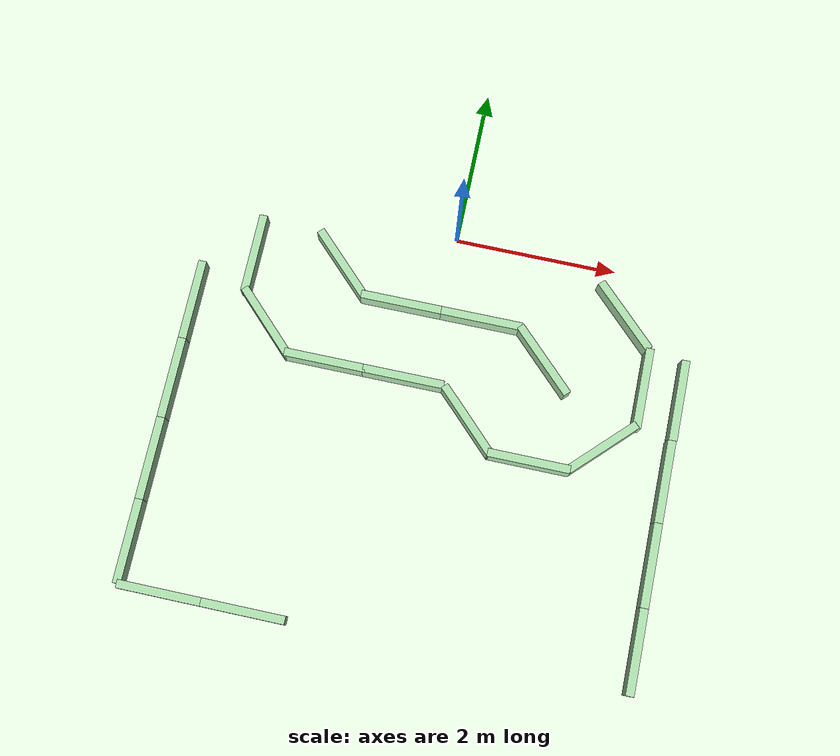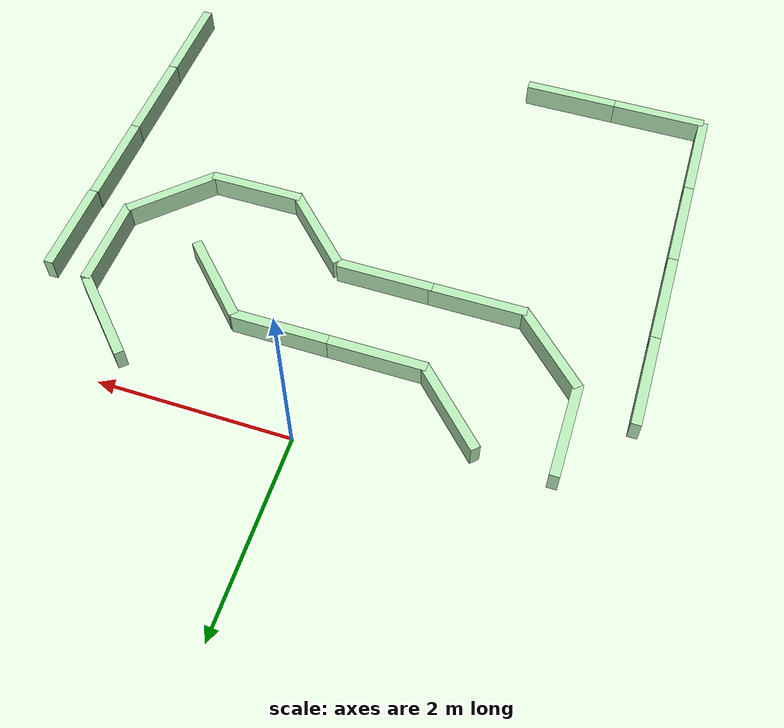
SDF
<sdf version="1.7">
 <world name="default">
  <model name="wall_100_25h_1_clone_1">
   <link name="link">
    <inertial>
     <mass>1</mass>
     <inertia>
      <ixx>0.166667</ixx>
      <ixy>0</ixy>
      <ixz>0</ixz>
      <iyy>0.166667</iyy>
      <iyz>0</iyz>
      <izz>0.166667</izz>
     </inertia>
    </inertial>
    <visual name="visual">
     <geometry><box><size>1 0.1 0.25</size></box></geometry>
     <material>
      <script><name>Gazebo/Grey</name><uri>file://media/materials/scripts/gazebo.material</uri></script>
      <ambient>0.3 0.5 0.3 1</ambient>
      <diffuse>0.7 0.9 0.7 1</diffuse>
      <specular>0.01 0.02 0.01 1</specular>
      <emissive>0 0 0 1</emissive>
      <lighting>1</lighting>
      <shader type="vertex"><normal_map>__default__</normal_map></shader>
     </material>
    </visual>
    <collision name="collision">
     <geometry><box><size>1 0.1 0.25</size></box></geometry>
     <surface>
      <friction>
       <ode><mu>1</mu><mu2>1</mu2><fdir1>0 0 0</fdir1><slip1>0</slip1><slip2>0</slip2></ode>
       <torsional>
        <coefficient>1</coefficient>
        <patch_radius>0</patch_radius>
        <surface_radius>0</surface_radius>
        <use_patch_radius>1</use_patch_radius>
        <ode><slip>0</slip></ode>
       </torsional>
      </friction>
      <bounce><restitution_coefficient>0</restitution_coefficient><threshold>1e+06</threshold></bounce>
      <contact>
       <collide_without_contact>0</collide_without_contact>
       <collide_without_contact_bitmask>1</collide_without_contact_bitmask>
       <collide_bitmask>1</collide_bitmask>
       <ode>
        <soft_cfm>0</soft_cfm>
        <soft_erp>0.2</soft_erp>
        <kp>1e+13</kp>
        <kd>1</kd>
        <max_vel>0.01</max_vel>
        <min_depth>0</min_depth>
       </ode>
       <bullet>
        <split_impulse>1</split_impulse>
        <split_impulse_penetration_threshold>-0.01</split_impulse_penetration_threshold>
        <soft_cfm>0</soft_cfm>
        <soft_erp>0.2</soft_erp>
        <kp>1e+13</kp>
        <kd>1</kd>
       </bullet>
      </contact>
     </surface>
    </collision>
   </link>
   <static>1</static>
   <pose>0.493942 -1 0.125 0.000404 -0 0</pose>
  </model>
  <model name="wall_100_25h_1_clone_2">
   <link name="link">
    <inertial>
     <mass>1</mass>
     <inertia>
      <ixx>0.166667</ixx>
      <ixy>0</ixy>
      <ixz>0</ixz>
      <iyy>0.166667</iyy>
      <iyz>0</iyz>
      <izz>0.166667</izz>
     </inertia>
    </inertial>
    <visual name="visual">
     <geometry><box><size>1 0.1 0.25</size></box></geometry>
     <material>
      <script><name>Gazebo/Grey</name><uri>file://media/materials/scripts/gazebo.material</uri></script>
      <ambient>0.3 0.5 0.3 1</ambient>
      <diffuse>0.7 0.9 0.7 1</diffuse>
      <specular>0.01 0.02 0.01 1</specular>
      <emissive>0 0 0 1</emissive>
      <lighting>1</lighting>
      <shader type="vertex"><normal_map>__default__</normal_map></shader>
     </material>
    </visual>
    <collision name="collision">
     <geometry><box><size>1 0.1 0.25</size></box></geometry>
     <surface>
      <friction>
       <ode><mu>1</mu><mu2>1</mu2><fdir1>0 0 0</fdir1><slip1>0</slip1><slip2>0</slip2></ode>
       <torsional>
        <coefficient>1</coefficient>
        <patch_radius>0</patch_radius>
        <surface_radius>0</surface_radius>
        <use_patch_radius>1</use_patch_radius>
        <ode><slip>0</slip></ode>
       </torsional>
      </friction>
      <bounce><restitution_coefficient>0</restitution_coefficient><threshold>1e+06</threshold></bounce>
      <contact>
       <collide_without_contact>0</collide_without_contact>
       <collide_without_contact_bitmask>1</collide_without_contact_bitmask>
       <collide_bitmask>1</collide_bitmask>
       <ode>
        <soft_cfm>0</soft_cfm>
        <soft_erp>0.2</soft_erp>
        <kp>1e+13</kp>
        <kd>1</kd>
        <max_vel>0.01</max_vel>
        <min_depth>0</min_depth>
       </ode>
       <bullet>
        <split_impulse>1</split_impulse>
        <split_impulse_penetration_threshold>-0.01</split_impulse_penetration_threshold>
        <soft_cfm>0</soft_cfm>
        <soft_erp>0.2</soft_erp>
        <kp>1e+13</kp>
        <kd>1</kd>
       </bullet>
      </contact>
     </surface>
    </collision>
   </link>
   <static>1</static>
   <pose>1.32902 -1.34995 0.125 0.000286 0.000286 -0.785398</pose>
  </model>
  <model name="wall_100_25h_1_clone_3">
   <link name="link">
    <inertial>
     <mass>1</mass>
     <inertia>
      <ixx>0.166667</ixx>
      <ixy>0</ixy>
      <ixz>0</ixz>
      <iyy>0.166667</iyy>
      <iyz>0</iyz>
      <izz>0.166667</izz>
     </inertia>
    </inertial>
    <visual name="visual">
     <geometry><box><size>1 0.1 0.25</size></box></geometry>
     <material>
      <script><name>Gazebo/Grey</name><uri>file://media/materials/scripts/gazebo.material</uri></script>
      <ambient>0.3 0.5 0.3 1</ambient>
      <diffuse>0.7 0.9 0.7 1</diffuse>
      <specular>0.01 0.02 0.01 1</specular>
      <emissive>0 0 0 1</emissive>
      <lighting>1</lighting>
      <shader type="vertex"><normal_map>__default__</normal_map></shader>
     </material>
    </visual>
    <collision name="collision">
     <geometry><box><size>1 0.1 0.25</size></box></geometry>
     <surface>
      <friction>
       <ode><mu>1</mu><mu2>1</mu2><fdir1>0 0 0</fdir1><slip1>0</slip1><slip2>0</slip2></ode>
       <torsional>
        <coefficient>1</coefficient>
        <patch_radius>0</patch_radius>
        <surface_radius>0</surface_radius>
        <use_patch_radius>1</use_patch_radius>
        <ode><slip>0</slip></ode>
       </torsional>
      </friction>
      <bounce><restitution_coefficient>0</restitution_coefficient><threshold>1e+06</threshold></bounce>
      <contact>
       <collide_without_contact>0</collide_without_contact>
       <collide_without_contact_bitmask>1</collide_without_contact_bitmask>
       <collide_bitmask>1</collide_bitmask>
       <ode>
        <soft_cfm>0</soft_cfm>
        <soft_erp>0.2</soft_erp>
        <kp>1e+13</kp>
        <kd>1</kd>
        <max_vel>0.01</max_vel>
        <min_depth>0</min_depth>
       </ode>
       <bullet>
        <split_impulse>1</split_impulse>
        <split_impulse_penetration_threshold>-0.01</split_impulse_penetration_threshold>
        <soft_cfm>0</soft_cfm>
        <soft_erp>0.2</soft_erp>
        <kp>1e+13</kp>
        <kd>1</kd>
       </bullet>
      </contact>
     </surface>
    </collision>
   </link>
   <static>1</static>
   <pose>0.578926 -2.26669 0.125 0.000286 0.000286 -0.785398</pose>
  </model>
  <model name="wall_100_25h_1_clone_4">
   <link name="link">
    <inertial>
     <mass>1</mass>
     <inertia>
      <ixx>0.166667</ixx>
      <ixy>0</ixy>
      <ixz>0</ixz>
      <iyy>0.166667</iyy>
      <iyz>0</iyz>
      <izz>0.166667</izz>
     </inertia>
    </inertial>
    <visual name="visual">
     <geometry><box><size>1 0.1 0.25</size></box></geometry>
     <material>
      <script><name>Gazebo/Grey</name><uri>file://media/materials/scripts/gazebo.material</uri></script>
      <ambient>0.3 0.5 0.3 1</ambient>
      <diffuse>0.7 0.9 0.7 1</diffuse>
      <specular>0.01 0.02 0.01 1</specular>
      <emissive>0 0 0 1</emissive>
      <lighting>1</lighting>
      <shader type="vertex"><normal_map>__default__</normal_map></shader>
     </material>
    </visual>
    <collision name="collision">
     <geometry><box><size>1 0.1 0.25</size></box></geometry>
     <surface>
      <friction>
       <ode><mu>1</mu><mu2>1</mu2><fdir1>0 0 0</fdir1><slip1>0</slip1><slip2>0</slip2></ode>
       <torsional>
        <coefficient>1</coefficient>
        <patch_radius>0</patch_radius>
        <surface_radius>0</surface_radius>
        <use_patch_radius>1</use_patch_radius>
        <ode><slip>0</slip></ode>
       </torsional>
      </friction>
      <bounce><restitution_coefficient>0</restitution_coefficient><threshold>1e+06</threshold></bounce>
      <contact>
       <collide_without_contact>0</collide_without_contact>
       <collide_without_contact_bitmask>1</collide_without_contact_bitmask>
       <collide_bitmask>1</collide_bitmask>
       <ode>
        <soft_cfm>0</soft_cfm>
        <soft_erp>0.2</soft_erp>
        <kp>1e+13</kp>
        <kd>1</kd>
        <max_vel>0.01</max_vel>
        <min_depth>0</min_depth>
       </ode>
       <bullet>
        <split_impulse>1</split_impulse>
        <split_impulse_penetration_threshold>-0.01</split_impulse_penetration_threshold>
        <soft_cfm>0</soft_cfm>
        <soft_erp>0.2</soft_erp>
        <kp>1e+13</kp>
        <kd>1</kd>
       </bullet>
      </contact>
     </surface>
    </collision>
   </link>
   <static>1</static>
   <pose>1.38496 -2.59745 0.12538 0.000404 -0 0</pose>
  </model>
  <model name="wall_100_25h_1_clone_5">
   <link name="link">
    <inertial>
     <mass>1</mass>
     <inertia>
      <ixx>0.166667</ixx>
      <ixy>0</ixy>
      <ixz>0</ixz>
      <iyy>0.166667</iyy>
      <iyz>0</iyz>
      <izz>0.166667</izz>
     </inertia>
    </inertial>
    <visual name="visual">
     <geometry><box><size>1 0.1 0.25</size></box></geometry>
     <material>
      <script><name>Gazebo/Grey</name><uri>file://media/materials/scripts/gazebo.material</uri></script>
      <ambient>0.3 0.5 0.3 1</ambient>
      <diffuse>0.7 0.9 0.7 1</diffuse>
      <specular>0.01 0.02 0.01 1</specular>
      <emissive>0 0 0 1</emissive>
      <lighting>1</lighting>
      <shader type="vertex"><normal_map>__default__</normal_map></shader>
     </material>
    </visual>
    <collision name="collision">
     <geometry><box><size>1 0.1 0.25</size></box></geometry>
     <surface>
      <friction>
       <ode><mu>1</mu><mu2>1</mu2><fdir1>0 0 0</fdir1><slip1>0</slip1><slip2>0</slip2></ode>
       <torsional>
        <coefficient>1</coefficient>
        <patch_radius>0</patch_radius>
        <surface_radius>0</surface_radius>
        <use_patch_radius>1</use_patch_radius>
        <ode><slip>0</slip></ode>
       </torsional>
      </friction>
      <bounce><restitution_coefficient>0</restitution_coefficient><threshold>1e+06</threshold></bounce>
      <contact>
       <collide_without_contact>0</collide_without_contact>
       <collide_without_contact_bitmask>1</collide_without_contact_bitmask>
       <collide_bitmask>1</collide_bitmask>
       <ode>
        <soft_cfm>0</soft_cfm>
        <soft_erp>0.2</soft_erp>
        <kp>1e+13</kp>
        <kd>1</kd>
        <max_vel>0.01</max_vel>
        <min_depth>0</min_depth>
       </ode>
       <bullet>
        <split_impulse>1</split_impulse>
        <split_impulse_penetration_threshold>-0.01</split_impulse_penetration_threshold>
        <soft_cfm>0</soft_cfm>
        <soft_erp>0.2</soft_erp>
        <kp>1e+13</kp>
        <kd>1</kd>
       </bullet>
      </contact>
     </surface>
    </collision>
   </link>
   <static>1</static>
   <pose>2.20967 -2.25233 0.125326 0.000286 -0.000286 0.785398</pose>
  </model>
  <model name="wall_100_25h_1_clone_7">
   <link name="link">
    <inertial>
     <mass>1</mass>
     <inertia>
      <ixx>0.166667</ixx>
      <ixy>0</ixy>
      <ixz>0</ixz>
      <iyy>0.166667</iyy>
      <iyz>0</iyz>
      <izz>0.166667</izz>
     </inertia>
    </inertial>
    <visual name="visual">
     <geometry><box><size>1 0.1 0.25</size></box></geometry>
     <material>
      <script><name>Gazebo/Grey</name><uri>file://media/materials/scripts/gazebo.material</uri></script>
      <ambient>0.3 0.5 0.3 1</ambient>
      <diffuse>0.7 0.9 0.7 1</diffuse>
      <specular>0.01 0.02 0.01 1</specular>
      <emissive>0 0 0 1</emissive>
      <lighting>1</lighting>
      <shader type="vertex"><normal_map>__default__</normal_map></shader>
     </material>
    </visual>
    <collision name="collision">
     <geometry><box><size>1 0.1 0.25</size></box></geometry>
     <surface>
      <friction>
       <ode><mu>1</mu><mu2>1</mu2><fdir1>0 0 0</fdir1><slip1>0</slip1><slip2>0</slip2></ode>
       <torsional>
        <coefficient>1</coefficient>
        <patch_radius>0</patch_radius>
        <surface_radius>0</surface_radius>
        <use_patch_radius>1</use_patch_radius>
        <ode><slip>0</slip></ode>
       </torsional>
      </friction>
      <bounce><restitution_coefficient>0</restitution_coefficient><threshold>1e+06</threshold></bounce>
      <contact>
       <collide_without_contact>0</collide_without_contact>
       <collide_without_contact_bitmask>1</collide_without_contact_bitmask>
       <collide_bitmask>1</collide_bitmask>
       <ode>
        <soft_cfm>0</soft_cfm>
        <soft_erp>0.2</soft_erp>
        <kp>1e+13</kp>
        <kd>1</kd>
        <max_vel>0.01</max_vel>
        <min_depth>0</min_depth>
       </ode>
       <bullet>
        <split_impulse>1</split_impulse>
        <split_impulse_penetration_threshold>-0.01</split_impulse_penetration_threshold>
        <soft_cfm>0</soft_cfm>
        <soft_erp>0.2</soft_erp>
        <kp>1e+13</kp>
        <kd>1</kd>
       </bullet>
      </contact>
     </surface>
    </collision>
   </link>
   <static>1</static>
   <pose>2.19547 -0.594014 0.125 0.000286 0.000286 -0.785398</pose>
  </model>
  <model name="wall_100_25h_1_clone_8">
   <link name="link">
    <inertial>
     <mass>1</mass>
     <inertia>
      <ixx>0.166667</ixx>
      <ixy>0</ixy>
      <ixz>0</ixz>
      <iyy>0.166667</iyy>
      <iyz>0</iyz>
      <izz>0.166667</izz>
     </inertia>
    </inertial>
    <visual name="visual">
     <geometry><box><size>1 0.1 0.25</size></box></geometry>
     <material>
      <script><name>Gazebo/Grey</name><uri>file://media/materials/scripts/gazebo.material</uri></script>
      <ambient>0.3 0.5 0.3 1</ambient>
      <diffuse>0.7 0.9 0.7 1</diffuse>
      <specular>0.01 0.02 0.01 1</specular>
      <emissive>0 0 0 1</emissive>
      <lighting>1</lighting>
      <shader type="vertex"><normal_map>__default__</normal_map></shader>
     </material>
    </visual>
    <collision name="collision">
     <geometry><box><size>1 0.1 0.25</size></box></geometry>
     <surface>
      <friction>
       <ode><mu>1</mu><mu2>1</mu2><fdir1>0 0 0</fdir1><slip1>0</slip1><slip2>0</slip2></ode>
       <torsional>
        <coefficient>1</coefficient>
        <patch_radius>0</patch_radius>
        <surface_radius>0</surface_radius>
        <use_patch_radius>1</use_patch_radius>
        <ode><slip>0</slip></ode>
       </torsional>
      </friction>
      <bounce><restitution_coefficient>0</restitution_coefficient><threshold>1e+06</threshold></bounce>
      <contact>
       <collide_without_contact>0</collide_without_contact>
       <collide_without_contact_bitmask>1</collide_without_contact_bitmask>
       <collide_bitmask>1</collide_bitmask>
       <ode>
        <soft_cfm>0</soft_cfm>
        <soft_erp>0.2</soft_erp>
        <kp>1e+13</kp>
        <kd>1</kd>
        <max_vel>0.01</max_vel>
        <min_depth>0</min_depth>
       </ode>
       <bullet>
        <split_impulse>1</split_impulse>
        <split_impulse_penetration_threshold>-0.01</split_impulse_penetration_threshold>
        <soft_cfm>0</soft_cfm>
        <soft_erp>0.2</soft_erp>
        <kp>1e+13</kp>
        <kd>1</kd>
       </bullet>
      </contact>
     </surface>
    </collision>
   </link>
   <static>1</static>
   <pose>-0.503817 -1 0.125 0.000404 -0 0</pose>
  </model>
  <model name="wall_100_25h_1_clone_9">
   <link name="link">
    <inertial>
     <mass>1</mass>
     <inertia>
      <ixx>0.166667</ixx>
      <ixy>0</ixy>
      <ixz>0</ixz>
      <iyy>0.166667</iyy>
      <iyz>0</iyz>
      <izz>0.166667</izz>
     </inertia>
    </inertial>
    <visual name="visual">
     <geometry><box><size>1 0.1 0.25</size></box></geometry>
     <material>
      <script><name>Gazebo/Grey</name><uri>file://media/materials/scripts/gazebo.material</uri></script>
      <ambient>0.3 0.5 0.3 1</ambient>
      <diffuse>0.7 0.9 0.7 1</diffuse>
      <specular>0.01 0.02 0.01 1</specular>
      <emissive>0 0 0 1</emissive>
      <lighting>1</lighting>
      <shader type="vertex"><normal_map>__default__</normal_map></shader>
     </material>
    </visual>
    <collision name="collision">
     <geometry><box><size>1 0.1 0.25</size></box></geometry>
     <surface>
      <friction>
       <ode><mu>1</mu><mu2>1</mu2><fdir1>0 0 0</fdir1><slip1>0</slip1><slip2>0</slip2></ode>
       <torsional>
        <coefficient>1</coefficient>
        <patch_radius>0</patch_radius>
        <surface_radius>0</surface_radius>
        <use_patch_radius>1</use_patch_radius>
        <ode><slip>0</slip></ode>
       </torsional>
      </friction>
      <bounce><restitution_coefficient>0</restitution_coefficient><threshold>1e+06</threshold></bounce>
      <contact>
       <collide_without_contact>0</collide_without_contact>
       <collide_without_contact_bitmask>1</collide_without_contact_bitmask>
       <collide_bitmask>1</collide_bitmask>
       <ode>
        <soft_cfm>0</soft_cfm>
        <soft_erp>0.2</soft_erp>
        <kp>1e+13</kp>
        <kd>1</kd>
        <max_vel>0.01</max_vel>
        <min_depth>0</min_depth>
       </ode>
       <bullet>
        <split_impulse>1</split_impulse>
        <split_impulse_penetration_threshold>-0.01</split_impulse_penetration_threshold>
        <soft_cfm>0</soft_cfm>
        <soft_erp>0.2</soft_erp>
        <kp>1e+13</kp>
        <kd>1</kd>
       </bullet>
      </contact>
     </surface>
    </collision>
   </link>
   <static>1</static>
   <pose>-1.31752 -0.661234 0.125 0.000286 0.000286 -0.785398</pose>
  </model>
  <model name="wall_100_25h_1_clone_9_clone">
   <link name="link">
    <inertial>
     <mass>1</mass>
     <inertia>
      <ixx>0.166667</ixx>
      <ixy>0</ixy>
      <ixz>0</ixz>
      <iyy>0.166667</iyy>
      <iyz>0</iyz>
      <izz>0.166667</izz>
     </inertia>
    </inertial>
    <visual name="visual">
     <geometry><box><size>1 0.1 0.25</size></box></geometry>
     <material>
      <script><name>Gazebo/Grey</name><uri>file://media/materials/scripts/gazebo.material</uri></script>
      <ambient>0.3 0.5 0.3 1</ambient>
      <diffuse>0.7 0.9 0.7 1</diffuse>
      <specular>0.01 0.02 0.01 1</specular>
      <emissive>0 0 0 1</emissive>
      <lighting>1</lighting>
      <shader type="vertex"><normal_map>__default__</normal_map></shader>
     </material>
    </visual>
    <collision name="collision">
     <geometry><box><size>1 0.1 0.25</size></box></geometry>
     <surface>
      <friction>
       <ode><mu>1</mu><mu2>1</mu2><fdir1>0 0 0</fdir1><slip1>0</slip1><slip2>0</slip2></ode>
       <torsional>
        <coefficient>1</coefficient>
        <patch_radius>0</patch_radius>
        <surface_radius>0</surface_radius>
        <use_patch_radius>1</use_patch_radius>
        <ode><slip>0</slip></ode>
       </torsional>
      </friction>
      <bounce><restitution_coefficient>0</restitution_coefficient><threshold>1e+06</threshold></bounce>
      <contact>
       <collide_without_contact>0</collide_without_contact>
       <collide_without_contact_bitmask>1</collide_without_contact_bitmask>
       <collide_bitmask>1</collide_bitmask>
       <ode>
        <soft_cfm>0</soft_cfm>
        <soft_erp>0.2</soft_erp>
        <kp>1e+13</kp>
        <kd>1</kd>
        <max_vel>0.01</max_vel>
        <min_depth>0</min_depth>
       </ode>
       <bullet>
        <split_impulse>1</split_impulse>
        <split_impulse_penetration_threshold>-0.01</split_impulse_penetration_threshold>
        <soft_cfm>0</soft_cfm>
        <soft_erp>0.2</soft_erp>
        <kp>1e+13</kp>
        <kd>1</kd>
       </bullet>
      </contact>
     </surface>
    </collision>
   </link>
   <static>1</static>
   <pose>-3 -1.5 0.125 0 0.000404 -1.57111</pose>
  </model>
  <model name="wall_100_25h_1_clone_9_clone_clone">
   <link name="link">
    <inertial>
     <mass>1</mass>
     <inertia>
      <ixx>0.166667</ixx>
      <ixy>0</ixy>
      <ixz>0</ixz>
      <iyy>0.166667</iyy>
      <iyz>0</iyz>
      <izz>0.166667</izz>
     </inertia>
    </inertial>
    <visual name="visual">
     <geometry><box><size>1 0.1 0.25</size></box></geometry>
     <material>
      <script><name>Gazebo/Grey</name><uri>file://media/materials/scripts/gazebo.material</uri></script>
      <ambient>0.3 0.5 0.3 1</ambient>
      <diffuse>0.7 0.9 0.7 1</diffuse>
      <specular>0.01 0.02 0.01 1</specular>
      <emissive>0 0 0 1</emissive>
      <lighting>1</lighting>
      <shader type="vertex"><normal_map>__default__</normal_map></shader>
     </material>
    </visual>
    <collision name="collision">
     <geometry><box><size>1 0.1 0.25</size></box></geometry>
     <surface>
      <friction>
       <ode><mu>1</mu><mu2>1</mu2><fdir1>0 0 0</fdir1><slip1>0</slip1><slip2>0</slip2></ode>
       <torsional>
        <coefficient>1</coefficient>
        <patch_radius>0</patch_radius>
        <surface_radius>0</surface_radius>
        <use_patch_radius>1</use_patch_radius>
        <ode><slip>0</slip></ode>
       </torsional>
      </friction>
      <bounce><restitution_coefficient>0</restitution_coefficient><threshold>1e+06</threshold></bounce>
      <contact>
       <collide_without_contact>0</collide_without_contact>
       <collide_without_contact_bitmask>1</collide_without_contact_bitmask>
       <collide_bitmask>1</collide_bitmask>
       <ode>
        <soft_cfm>0</soft_cfm>
        <soft_erp>0.2</soft_erp>
        <kp>1e+13</kp>
        <kd>1</kd>
        <max_vel>0.01</max_vel>
        <min_depth>0</min_depth>
       </ode>
       <bullet>
        <split_impulse>1</split_impulse>
        <split_impulse_penetration_threshold>-0.01</split_impulse_penetration_threshold>
        <soft_cfm>0</soft_cfm>
        <soft_erp>0.2</soft_erp>
        <kp>1e+13</kp>
        <kd>1</kd>
       </bullet>
      </contact>
     </surface>
    </collision>
   </link>
   <static>1</static>
   <pose>-3 -2.5 0.125 0 0.000404 -1.57111</pose>
  </model>
  <model name="wall_100_25h_1_clone_9_clone_clone_0">
   <link name="link">
    <inertial>
     <mass>1</mass>
     <inertia>
      <ixx>0.166667</ixx>
      <ixy>0</ixy>
      <ixz>0</ixz>
      <iyy>0.166667</iyy>
      <iyz>0</iyz>
      <izz>0.166667</izz>
     </inertia>
    </inertial>
    <visual name="visual">
     <geometry><box><size>1 0.1 0.25</size></box></geometry>
     <material>
      <script><name>Gazebo/Grey</name><uri>file://media/materials/scripts/gazebo.material</uri></script>
      <ambient>0.3 0.5 0.3 1</ambient>
      <diffuse>0.7 0.9 0.7 1</diffuse>
      <specular>0.01 0.02 0.01 1</specular>
      <emissive>0 0 0 1</emissive>
      <lighting>1</lighting>
      <shader type="vertex"><normal_map>__default__</normal_map></shader>
     </material>
    </visual>
    <collision name="collision">
     <geometry><box><size>1 0.1 0.25</size></box></geometry>
     <surface>
      <friction>
       <ode><mu>1</mu><mu2>1</mu2><fdir1>0 0 0</fdir1><slip1>0</slip1><slip2>0</slip2></ode>
       <torsional>
        <coefficient>1</coefficient>
        <patch_radius>0</patch_radius>
        <surface_radius>0</surface_radius>
        <use_patch_radius>1</use_patch_radius>
        <ode><slip>0</slip></ode>
       </torsional>
      </friction>
      <bounce><restitution_coefficient>0</restitution_coefficient><threshold>1e+06</threshold></bounce>
      <contact>
       <collide_without_contact>0</collide_without_contact>
       <collide_without_contact_bitmask>1</collide_without_contact_bitmask>
       <collide_bitmask>1</collide_bitmask>
       <ode>
        <soft_cfm>0</soft_cfm>
        <soft_erp>0.2</soft_erp>
        <kp>1e+13</kp>
        <kd>1</kd>
        <max_vel>0.01</max_vel>
        <min_depth>0</min_depth>
       </ode>
       <bullet>
        <split_impulse>1</split_impulse>
        <split_impulse_penetration_threshold>-0.01</split_impulse_penetration_threshold>
        <soft_cfm>0</soft_cfm>
        <soft_erp>0.2</soft_erp>
        <kp>1e+13</kp>
        <kd>1</kd>
       </bullet>
      </contact>
     </surface>
    </collision>
   </link>
   <static>1</static>
   <pose>-3 -3.5 0.125 0 0.000404 -1.57111</pose>
  </model>
  <model name="wall_100_25h_1_clone_9_clone_clone_1">
   <link name="link">
    <inertial>
     <mass>1</mass>
     <inertia>
      <ixx>0.166667</ixx>
      <ixy>0</ixy>
      <ixz>0</ixz>
      <iyy>0.166667</iyy>
      <iyz>0</iyz>
      <izz>0.166667</izz>
     </inertia>
    </inertial>
    <visual name="visual">
     <geometry><box><size>1 0.1 0.25</size></box></geometry>
     <material>
      <script><name>Gazebo/Grey</name><uri>file://media/materials/scripts/gazebo.material</uri></script>
      <ambient>0.3 0.5 0.3 1</ambient>
      <diffuse>0.7 0.9 0.7 1</diffuse>
      <specular>0.01 0.02 0.01 1</specular>
      <emissive>0 0 0 1</emissive>
      <lighting>1</lighting>
      <shader type="vertex"><normal_map>__default__</normal_map></shader>
     </material>
    </visual>
    <collision name="collision">
     <geometry><box><size>1 0.1 0.25</size></box></geometry>
     <surface>
      <friction>
       <ode><mu>1</mu><mu2>1</mu2><fdir1>0 0 0</fdir1><slip1>0</slip1><slip2>0</slip2></ode>
       <torsional>
        <coefficient>1</coefficient>
        <patch_radius>0</patch_radius>
        <surface_radius>0</surface_radius>
        <use_patch_radius>1</use_patch_radius>
        <ode><slip>0</slip></ode>
       </torsional>
      </friction>
      <bounce><restitution_coefficient>0</restitution_coefficient><threshold>1e+06</threshold></bounce>
      <contact>
       <collide_without_contact>0</collide_without_contact>
       <collide_without_contact_bitmask>1</collide_without_contact_bitmask>
       <collide_bitmask>1</collide_bitmask>
       <ode>
        <soft_cfm>0</soft_cfm>
        <soft_erp>0.2</soft_erp>
        <kp>1e+13</kp>
        <kd>1</kd>
        <max_vel>0.01</max_vel>
        <min_depth>0</min_depth>
       </ode>
       <bullet>
        <split_impulse>1</split_impulse>
        <split_impulse_penetration_threshold>-0.01</split_impulse_penetration_threshold>
        <soft_cfm>0</soft_cfm>
        <soft_erp>0.2</soft_erp>
        <kp>1e+13</kp>
        <kd>1</kd>
       </bullet>
      </contact>
     </surface>
    </collision>
   </link>
   <static>1</static>
   <pose>-3 -4.5 0.125 0 0.000404 -1.57111</pose>
  </model>
  <model name="wall_100_25h_1_clone_9_clone_clone_2">
   <link name="link">
    <inertial>
     <mass>1</mass>
     <inertia>
      <ixx>0.166667</ixx>
      <ixy>0</ixy>
      <ixz>0</ixz>
      <iyy>0.166667</iyy>
      <iyz>0</iyz>
      <izz>0.166667</izz>
     </inertia>
    </inertial>
    <visual name="visual">
     <geometry><box><size>1 0.1 0.25</size></box></geometry>
     <material>
      <script><name>Gazebo/Grey</name><uri>file://media/materials/scripts/gazebo.material</uri></script>
      <ambient>0.3 0.5 0.3 1</ambient>
      <diffuse>0.7 0.9 0.7 1</diffuse>
      <specular>0.01 0.02 0.01 1</specular>
      <emissive>0 0 0 1</emissive>
      <lighting>1</lighting>
      <shader type="vertex"><normal_map>__default__</normal_map></shader>
     </material>
    </visual>
    <collision name="collision">
     <geometry><box><size>1 0.1 0.25</size></box></geometry>
     <surface>
      <friction>
       <ode><mu>1</mu><mu2>1</mu2><fdir1>0 0 0</fdir1><slip1>0</slip1><slip2>0</slip2></ode>
       <torsional>
        <coefficient>1</coefficient>
        <patch_radius>0</patch_radius>
        <surface_radius>0</surface_radius>
        <use_patch_radius>1</use_patch_radius>
        <ode><slip>0</slip></ode>
       </torsional>
      </friction>
      <bounce><restitution_coefficient>0</restitution_coefficient><threshold>1e+06</threshold></bounce>
      <contact>
       <collide_without_contact>0</collide_without_contact>
       <collide_without_contact_bitmask>1</collide_without_contact_bitmask>
       <collide_bitmask>1</collide_bitmask>
       <ode>
        <soft_cfm>0</soft_cfm>
        <soft_erp>0.2</soft_erp>
        <kp>1e+13</kp>
        <kd>1</kd>
        <max_vel>0.01</max_vel>
        <min_depth>0</min_depth>
       </ode>
       <bullet>
        <split_impulse>1</split_impulse>
        <split_impulse_penetration_threshold>-0.01</split_impulse_penetration_threshold>
        <soft_cfm>0</soft_cfm>
        <soft_erp>0.2</soft_erp>
        <kp>1e+13</kp>
        <kd>1</kd>
       </bullet>
      </contact>
     </surface>
    </collision>
   </link>
   <static>1</static>
   <pose>3 -3.5 0.125 0 0.000404 -1.57111</pose>
  </model>
  <model name="wall_100_25h_1_clone_9_clone_clone_3">
   <link name="link">
    <inertial>
     <mass>1</mass>
     <inertia>
      <ixx>0.166667</ixx>
      <ixy>0</ixy>
      <ixz>0</ixz>
      <iyy>0.166667</iyy>
      <iyz>0</iyz>
      <izz>0.166667</izz>
     </inertia>
    </inertial>
    <visual name="visual">
     <geometry><box><size>1 0.1 0.25</size></box></geometry>
     <material>
      <script><name>Gazebo/Grey</name><uri>file://media/materials/scripts/gazebo.material</uri></script>
      <ambient>0.3 0.5 0.3 1</ambient>
      <diffuse>0.7 0.9 0.7 1</diffuse>
      <specular>0.01 0.02 0.01 1</specular>
      <emissive>0 0 0 1</emissive>
      <lighting>1</lighting>
      <shader type="vertex"><normal_map>__default__</normal_map></shader>
     </material>
    </visual>
    <collision name="collision">
     <geometry><box><size>1 0.1 0.25</size></box></geometry>
     <surface>
      <friction>
       <ode><mu>1</mu><mu2>1</mu2><fdir1>0 0 0</fdir1><slip1>0</slip1><slip2>0</slip2></ode>
       <torsional>
        <coefficient>1</coefficient>
        <patch_radius>0</patch_radius>
        <surface_radius>0</surface_radius>
        <use_patch_radius>1</use_patch_radius>
        <ode><slip>0</slip></ode>
       </torsional>
      </friction>
      <bounce><restitution_coefficient>0</restitution_coefficient><threshold>1e+06</threshold></bounce>
      <contact>
       <collide_without_contact>0</collide_without_contact>
       <collide_without_contact_bitmask>1</collide_without_contact_bitmask>
       <collide_bitmask>1</collide_bitmask>
       <ode>
        <soft_cfm>0</soft_cfm>
        <soft_erp>0.2</soft_erp>
        <kp>1e+13</kp>
        <kd>1</kd>
        <max_vel>0.01</max_vel>
        <min_depth>0</min_depth>
       </ode>
       <bullet>
        <split_impulse>1</split_impulse>
        <split_impulse_penetration_threshold>-0.01</split_impulse_penetration_threshold>
        <soft_cfm>0</soft_cfm>
        <soft_erp>0.2</soft_erp>
        <kp>1e+13</kp>
        <kd>1</kd>
       </bullet>
      </contact>
     </surface>
    </collision>
   </link>
   <static>1</static>
   <pose>3 -4.5 0.125 0 0.000404 -1.57111</pose>
  </model>
  <model name="wall_100_25h_1_clone_9_clone_clone_4">
   <link name="link">
    <inertial>
     <mass>1</mass>
     <inertia>
      <ixx>0.166667</ixx>
      <ixy>0</ixy>
      <ixz>0</ixz>
      <iyy>0.166667</iyy>
      <iyz>0</iyz>
      <izz>0.166667</izz>
     </inertia>
    </inertial>
    <visual name="visual">
     <geometry><box><size>1 0.1 0.25</size></box></geometry>
     <material>
      <script><name>Gazebo/Grey</name><uri>file://media/materials/scripts/gazebo.material</uri></script>
      <ambient>0.3 0.5 0.3 1</ambient>
      <diffuse>0.7 0.9 0.7 1</diffuse>
      <specular>0.01 0.02 0.01 1</specular>
      <emissive>0 0 0 1</emissive>
      <lighting>1</lighting>
      <shader type="vertex"><normal_map>__default__</normal_map></shader>
     </material>
    </visual>
    <collision name="collision">
     <geometry><box><size>1 0.1 0.25</size></box></geometry>
     <surface>
      <friction>
       <ode><mu>1</mu><mu2>1</mu2><fdir1>0 0 0</fdir1><slip1>0</slip1><slip2>0</slip2></ode>
       <torsional>
        <coefficient>1</coefficient>
        <patch_radius>0</patch_radius>
        <surface_radius>0</surface_radius>
        <use_patch_radius>1</use_patch_radius>
        <ode><slip>0</slip></ode>
       </torsional>
      </friction>
      <bounce><restitution_coefficient>0</restitution_coefficient><threshold>1e+06</threshold></bounce>
      <contact>
       <collide_without_contact>0</collide_without_contact>
       <collide_without_contact_bitmask>1</collide_without_contact_bitmask>
       <collide_bitmask>1</collide_bitmask>
       <ode>
        <soft_cfm>0</soft_cfm>
        <soft_erp>0.2</soft_erp>
        <kp>1e+13</kp>
        <kd>1</kd>
        <max_vel>0.01</max_vel>
        <min_depth>0</min_depth>
       </ode>
       <bullet>
        <split_impulse>1</split_impulse>
        <split_impulse_penetration_threshold>-0.01</split_impulse_penetration_threshold>
        <soft_cfm>0</soft_cfm>
        <soft_erp>0.2</soft_erp>
        <kp>1e+13</kp>
        <kd>1</kd>
       </bullet>
      </contact>
     </surface>
    </collision>
   </link>
   <static>1</static>
   <pose>3 -2.5 0.125 0 0.000404 -1.57111</pose>
  </model>
  <model name="wall_100_25h_1_clone_9_clone_clone_5">
   <link name="link">
    <inertial>
     <mass>1</mass>
     <inertia>
      <ixx>0.166667</ixx>
      <ixy>0</ixy>
      <ixz>0</ixz>
      <iyy>0.166667</iyy>
      <iyz>0</iyz>
      <izz>0.166667</izz>
     </inertia>
    </inertial>
    <visual name="visual">
     <geometry><box><size>1 0.1 0.25</size></box></geometry>
     <material>
      <script><name>Gazebo/Grey</name><uri>file://media/materials/scripts/gazebo.material</uri></script>
      <ambient>0.3 0.5 0.3 1</ambient>
      <diffuse>0.7 0.9 0.7 1</diffuse>
      <specular>0.01 0.02 0.01 1</specular>
      <emissive>0 0 0 1</emissive>
      <lighting>1</lighting>
      <shader type="vertex"><normal_map>__default__</normal_map></shader>
     </material>
    </visual>
    <collision name="collision">
     <geometry><box><size>1 0.1 0.25</size></box></geometry>
     <surface>
      <friction>
       <ode><mu>1</mu><mu2>1</mu2><fdir1>0 0 0</fdir1><slip1>0</slip1><slip2>0</slip2></ode>
       <torsional>
        <coefficient>1</coefficient>
        <patch_radius>0</patch_radius>
        <surface_radius>0</surface_radius>
        <use_patch_radius>1</use_patch_radius>
        <ode><slip>0</slip></ode>
       </torsional>
      </friction>
      <bounce><restitution_coefficient>0</restitution_coefficient><threshold>1e+06</threshold></bounce>
      <contact>
       <collide_without_contact>0</collide_without_contact>
       <collide_without_contact_bitmask>1</collide_without_contact_bitmask>
       <collide_bitmask>1</collide_bitmask>
       <ode>
        <soft_cfm>0</soft_cfm>
        <soft_erp>0.2</soft_erp>
        <kp>1e+13</kp>
        <kd>1</kd>
        <max_vel>0.01</max_vel>
        <min_depth>0</min_depth>
       </ode>
       <bullet>
        <split_impulse>1</split_impulse>
        <split_impulse_penetration_threshold>-0.01</split_impulse_penetration_threshold>
        <soft_cfm>0</soft_cfm>
        <soft_erp>0.2</soft_erp>
        <kp>1e+13</kp>
        <kd>1</kd>
       </bullet>
      </contact>
     </surface>
    </collision>
   </link>
   <static>1</static>
   <pose>2.56422 -1.44291 0.125 0 0.000404 -1.57111</pose>
  </model>
  <model name="wall_100_25h_1_clone_9_clone_clone_9">
   <link name="link">
    <inertial>
     <mass>1</mass>
     <inertia>
      <ixx>0.166667</ixx>
      <ixy>0</ixy>
      <ixz>0</ixz>
      <iyy>0.166667</iyy>
      <iyz>0</iyz>
      <izz>0.166667</izz>
     </inertia>
    </inertial>
    <visual name="visual">
     <geometry><box><size>1 0.1 0.25</size></box></geometry>
     <material>
      <script><name>Gazebo/Grey</name><uri>file://media/materials/scripts/gazebo.material</uri></script>
      <ambient>0.3 0.5 0.3 1</ambient>
      <diffuse>0.7 0.9 0.7 1</diffuse>
      <specular>0.01 0.02 0.01 1</specular>
      <emissive>0 0 0 1</emissive>
      <lighting>1</lighting>
      <shader type="vertex"><normal_map>__default__</normal_map></shader>
     </material>
    </visual>
    <collision name="collision">
     <geometry><box><size>1 0.1 0.25</size></box></geometry>
     <surface>
      <friction>
       <ode><mu>1</mu><mu2>1</mu2><fdir1>0 0 0</fdir1><slip1>0</slip1><slip2>0</slip2></ode>
       <torsional>
        <coefficient>1</coefficient>
        <patch_radius>0</patch_radius>
        <surface_radius>0</surface_radius>
        <use_patch_radius>1</use_patch_radius>
        <ode><slip>0</slip></ode>
       </torsional>
      </friction>
      <bounce><restitution_coefficient>0</restitution_coefficient><threshold>1e+06</threshold></bounce>
      <contact>
       <collide_without_contact>0</collide_without_contact>
       <collide_without_contact_bitmask>1</collide_without_contact_bitmask>
       <collide_bitmask>1</collide_bitmask>
       <ode>
        <soft_cfm>0</soft_cfm>
        <soft_erp>0.2</soft_erp>
        <kp>1e+13</kp>
        <kd>1</kd>
        <max_vel>0.01</max_vel>
        <min_depth>0</min_depth>
       </ode>
       <bullet>
        <split_impulse>1</split_impulse>
        <split_impulse_penetration_threshold>-0.01</split_impulse_penetration_threshold>
        <soft_cfm>0</soft_cfm>
        <soft_erp>0.2</soft_erp>
        <kp>1e+13</kp>
        <kd>1</kd>
       </bullet>
      </contact>
     </surface>
    </collision>
   </link>
   <static>1</static>
   <pose>-2.40661 -0.762616 0.125 0 0.000404 -1.57111</pose>
  </model>
  <model name="wall_100_25h_1_clone_3_clone">
   <link name="link">
    <inertial>
     <mass>1</mass>
     <inertia>
      <ixx>0.166667</ixx>
      <ixy>0</ixy>
      <ixz>0</ixz>
      <iyy>0.166667</iyy>
      <iyz>0</iyz>
      <izz>0.166667</izz>
     </inertia>
    </inertial>
    <visual name="visual">
     <geometry><box><size>1 0.1 0.25</size></box></geometry>
     <material>
      <script><name>Gazebo/Grey</name><uri>file://media/materials/scripts/gazebo.material</uri></script>
      <ambient>0.3 0.5 0.3 1</ambient>
      <diffuse>0.7 0.9 0.7 1</diffuse>
      <specular>0.01 0.02 0.01 1</specular>
      <emissive>0 0 0 1</emissive>
      <lighting>1</lighting>
      <shader type="vertex"><normal_map>__default__</normal_map></shader>
     </material>
    </visual>
    <collision name="collision">
     <geometry><box><size>1 0.1 0.25</size></box></geometry>
     <surface>
      <friction>
       <ode><mu>1</mu><mu2>1</mu2><fdir1>0 0 0</fdir1><slip1>0</slip1><slip2>0</slip2></ode>
       <torsional>
        <coefficient>1</coefficient>
        <patch_radius>0</patch_radius>
        <surface_radius>0</surface_radius>
        <use_patch_radius>1</use_patch_radius>
        <ode><slip>0</slip></ode>
       </torsional>
      </friction>
      <bounce><restitution_coefficient>0</restitution_coefficient><threshold>1e+06</threshold></bounce>
      <contact>
       <collide_without_contact>0</collide_without_contact>
       <collide_without_contact_bitmask>1</collide_without_contact_bitmask>
       <collide_bitmask>1</collide_bitmask>
       <ode>
        <soft_cfm>0</soft_cfm>
        <soft_erp>0.2</soft_erp>
        <kp>1e+13</kp>
        <kd>1</kd>
        <max_vel>0.01</max_vel>
        <min_depth>0</min_depth>
       </ode>
       <bullet>
        <split_impulse>1</split_impulse>
        <split_impulse_penetration_threshold>-0.01</split_impulse_penetration_threshold>
        <soft_cfm>0</soft_cfm>
        <soft_erp>0.2</soft_erp>
        <kp>1e+13</kp>
        <kd>1</kd>
       </bullet>
      </contact>
     </surface>
    </collision>
   </link>
   <static>1</static>
   <pose>-2.5 -5 0.125 0.000404 -0 0</pose>
  </model>
  <model name="wall_100_25h_1_clone_3_clone_0">
   <link name="link">
    <inertial>
     <mass>1</mass>
     <inertia>
      <ixx>0.166667</ixx>
      <ixy>0</ixy>
      <ixz>0</ixz>
      <iyy>0.166667</iyy>
      <iyz>0</iyz>
      <izz>0.166667</izz>
     </inertia>
    </inertial>
    <visual name="visual">
     <geometry><box><size>1 0.1 0.25</size></box></geometry>
     <material>
      <script><name>Gazebo/Grey</name><uri>file://media/materials/scripts/gazebo.material</uri></script>
      <ambient>0.3 0.5 0.3 1</ambient>
      <diffuse>0.7 0.9 0.7 1</diffuse>
      <specular>0.01 0.02 0.01 1</specular>
      <emissive>0 0 0 1</emissive>
      <lighting>1</lighting>
      <shader type="vertex"><normal_map>__default__</normal_map></shader>
     </material>
    </visual>
    <collision name="collision">
     <geometry><box><size>1 0.1 0.25</size></box></geometry>
     <surface>
      <friction>
       <ode><mu>1</mu><mu2>1</mu2><fdir1>0 0 0</fdir1><slip1>0</slip1><slip2>0</slip2></ode>
       <torsional>
        <coefficient>1</coefficient>
        <patch_radius>0</patch_radius>
        <surface_radius>0</surface_radius>
        <use_patch_radius>1</use_patch_radius>
        <ode><slip>0</slip></ode>
       </torsional>
      </friction>
      <bounce><restitution_coefficient>0</restitution_coefficient><threshold>1e+06</threshold></bounce>
      <contact>
       <collide_without_contact>0</collide_without_contact>
       <collide_without_contact_bitmask>1</collide_without_contact_bitmask>
       <collide_bitmask>1</collide_bitmask>
       <ode>
        <soft_cfm>0</soft_cfm>
        <soft_erp>0.2</soft_erp>
        <kp>1e+13</kp>
        <kd>1</kd>
        <max_vel>0.01</max_vel>
        <min_depth>0</min_depth>
       </ode>
       <bullet>
        <split_impulse>1</split_impulse>
        <split_impulse_penetration_threshold>-0.01</split_impulse_penetration_threshold>
        <soft_cfm>0</soft_cfm>
        <soft_erp>0.2</soft_erp>
        <kp>1e+13</kp>
        <kd>1</kd>
       </bullet>
      </contact>
     </surface>
    </collision>
   </link>
   <static>1</static>
   <pose>-1.5 -5 0.125 0.000404 -0 0</pose>
  </model>
  <model name="wall_100_25h_1_clone_3_clone_1">
   <link name="link">
    <inertial>
     <mass>1</mass>
     <inertia>
      <ixx>0.166667</ixx>
      <ixy>0</ixy>
      <ixz>0</ixz>
      <iyy>0.166667</iyy>
      <iyz>0</iyz>
      <izz>0.166667</izz>
     </inertia>
    </inertial>
    <visual name="visual">
     <geometry><box><size>1 0.1 0.25</size></box></geometry>
     <material>
      <script><name>Gazebo/Grey</name><uri>file://media/materials/scripts/gazebo.material</uri></script>
      <ambient>0.3 0.5 0.3 1</ambient>
      <diffuse>0.7 0.9 0.7 1</diffuse>
      <specular>0.01 0.02 0.01 1</specular>
      <emissive>0 0 0 1</emissive>
      <lighting>1</lighting>
      <shader type="vertex"><normal_map>__default__</normal_map></shader>
     </material>
    </visual>
    <collision name="collision">
     <geometry><box><size>1 0.1 0.25</size></box></geometry>
     <surface>
      <friction>
       <ode><mu>1</mu><mu2>1</mu2><fdir1>0 0 0</fdir1><slip1>0</slip1><slip2>0</slip2></ode>
       <torsional>
        <coefficient>1</coefficient>
        <patch_radius>0</patch_radius>
        <surface_radius>0</surface_radius>
        <use_patch_radius>1</use_patch_radius>
        <ode><slip>0</slip></ode>
       </torsional>
      </friction>
      <bounce><restitution_coefficient>0</restitution_coefficient><threshold>1e+06</threshold></bounce>
      <contact>
       <collide_without_contact>0</collide_without_contact>
       <collide_without_contact_bitmask>1</collide_without_contact_bitmask>
       <collide_bitmask>1</collide_bitmask>
       <ode>
        <soft_cfm>0</soft_cfm>
        <soft_erp>0.2</soft_erp>
        <kp>1e+13</kp>
        <kd>1</kd>
        <max_vel>0.01</max_vel>
        <min_depth>0</min_depth>
       </ode>
       <bullet>
        <split_impulse>1</split_impulse>
        <split_impulse_penetration_threshold>-0.01</split_impulse_penetration_threshold>
        <soft_cfm>0</soft_cfm>
        <soft_erp>0.2</soft_erp>
        <kp>1e+13</kp>
        <kd>1</kd>
       </bullet>
      </contact>
     </surface>
    </collision>
   </link>
   <static>1</static>
   <pose>3.00899 -1.50027 0.125 0 0.000404 -1.5708</pose>
  </model>
  <model name="wall_100_25h_1_clone_3_clone_2">
   <link name="link">
    <inertial>
     <mass>1</mass>
     <inertia>
      <ixx>0.166667</ixx>
      <ixy>0</ixy>
      <ixz>0</ixz>
      <iyy>0.166667</iyy>
      <iyz>0</iyz>
      <izz>0.166667</izz>
     </inertia>
    </inertial>
    <visual name="visual">
     <geometry><box><size>1 0.1 0.25</size></box></geometry>
     <material>
      <script><name>Gazebo/Grey</name><uri>file://media/materials/scripts/gazebo.material</uri></script>
      <ambient>0.3 0.5 0.3 1</ambient>
      <diffuse>0.7 0.9 0.7 1</diffuse>
      <specular>0.01 0.02 0.01 1</specular>
      <emissive>0 0 0 1</emissive>
      <lighting>1</lighting>
      <shader type="vertex"><normal_map>__default__</normal_map></shader>
     </material>
    </visual>
    <collision name="collision">
     <geometry><box><size>1 0.1 0.25</size></box></geometry>
     <surface>
      <friction>
       <ode><mu>1</mu><mu2>1</mu2><fdir1>0 0 0</fdir1><slip1>0</slip1><slip2>0</slip2></ode>
       <torsional>
        <coefficient>1</coefficient>
        <patch_radius>0</patch_radius>
        <surface_radius>0</surface_radius>
        <use_patch_radius>1</use_patch_radius>
        <ode><slip>0</slip></ode>
       </torsional>
      </friction>
      <bounce><restitution_coefficient>0</restitution_coefficient><threshold>1e+06</threshold></bounce>
      <contact>
       <collide_without_contact>0</collide_without_contact>
       <collide_without_contact_bitmask>1</collide_without_contact_bitmask>
       <collide_bitmask>1</collide_bitmask>
       <ode>
        <soft_cfm>0</soft_cfm>
        <soft_erp>0.2</soft_erp>
        <kp>1e+13</kp>
        <kd>1</kd>
        <max_vel>0.01</max_vel>
        <min_depth>0</min_depth>
       </ode>
       <bullet>
        <split_impulse>1</split_impulse>
        <split_impulse_penetration_threshold>-0.01</split_impulse_penetration_threshold>
        <soft_cfm>0</soft_cfm>
        <soft_erp>0.2</soft_erp>
        <kp>1e+13</kp>
        <kd>1</kd>
       </bullet>
      </contact>
     </surface>
    </collision>
   </link>
   <static>1</static>
   <pose>-1.25194 -1.90709 0.125 0.000404 -0 0</pose>
  </model>
  <model name="wall_100_25h_1_clone_3_clone_3">
   <link name="link">
    <inertial>
     <mass>1</mass>
     <inertia>
      <ixx>0.166667</ixx>
      <ixy>0</ixy>
      <ixz>0</ixz>
      <iyy>0.166667</iyy>
      <iyz>0</iyz>
      <izz>0.166667</izz>
     </inertia>
    </inertial>
    <visual name="visual">
     <geometry><box><size>1 0.1 0.25</size></box></geometry>
     <material>
      <script><name>Gazebo/Grey</name><uri>file://media/materials/scripts/gazebo.material</uri></script>
      <ambient>0.3 0.5 0.3 1</ambient>
      <diffuse>0.7 0.9 0.7 1</diffuse>
      <specular>0.01 0.02 0.01 1</specular>
      <emissive>0 0 0 1</emissive>
      <lighting>1</lighting>
      <shader type="vertex"><normal_map>__default__</normal_map></shader>
     </material>
    </visual>
    <collision name="collision">
     <geometry><box><size>1 0.1 0.25</size></box></geometry>
     <surface>
      <friction>
       <ode><mu>1</mu><mu2>1</mu2><fdir1>0 0 0</fdir1><slip1>0</slip1><slip2>0</slip2></ode>
       <torsional>
        <coefficient>1</coefficient>
        <patch_radius>0</patch_radius>
        <surface_radius>0</surface_radius>
        <use_patch_radius>1</use_patch_radius>
        <ode><slip>0</slip></ode>
       </torsional>
      </friction>
      <bounce><restitution_coefficient>0</restitution_coefficient><threshold>1e+06</threshold></bounce>
      <contact>
       <collide_without_contact>0</collide_without_contact>
       <collide_without_contact_bitmask>1</collide_without_contact_bitmask>
       <collide_bitmask>1</collide_bitmask>
       <ode>
        <soft_cfm>0</soft_cfm>
        <soft_erp>0.2</soft_erp>
        <kp>1e+13</kp>
        <kd>1</kd>
        <max_vel>0.01</max_vel>
        <min_depth>0</min_depth>
       </ode>
       <bullet>
        <split_impulse>1</split_impulse>
        <split_impulse_penetration_threshold>-0.01</split_impulse_penetration_threshold>
        <soft_cfm>0</soft_cfm>
        <soft_erp>0.2</soft_erp>
        <kp>1e+13</kp>
        <kd>1</kd>
       </bullet>
      </contact>
     </surface>
    </collision>
   </link>
   <static>1</static>
   <pose>-2.05854 -1.5785 0.125 0.000286 0.000286 -0.785398</pose>
  </model>
  <model name="wall_100_25h_1_clone_3_clone_4">
   <link name="link">
    <inertial>
     <mass>1</mass>
     <inertia>
      <ixx>0.166667</ixx>
      <ixy>0</ixy>
      <ixz>0</ixz>
      <iyy>0.166667</iyy>
      <iyz>0</iyz>
      <izz>0.166667</izz>
     </inertia>
    </inertial>
    <visual name="visual">
     <geometry><box><size>1 0.1 0.25</size></box></geometry>
     <material>
      <script><name>Gazebo/Grey</name><uri>file://media/materials/scripts/gazebo.material</uri></script>
      <ambient>0.3 0.5 0.3 1</ambient>
      <diffuse>0.7 0.9 0.7 1</diffuse>
      <specular>0.01 0.02 0.01 1</specular>
      <emissive>0 0 0 1</emissive>
      <lighting>1</lighting>
      <shader type="vertex"><normal_map>__default__</normal_map></shader>
     </material>
    </visual>
    <collision name="collision">
     <geometry><box><size>1 0.1 0.25</size></box></geometry>
     <surface>
      <friction>
       <ode><mu>1</mu><mu2>1</mu2><fdir1>0 0 0</fdir1><slip1>0</slip1><slip2>0</slip2></ode>
       <torsional>
        <coefficient>1</coefficient>
        <patch_radius>0</patch_radius>
        <surface_radius>0</surface_radius>
        <use_patch_radius>1</use_patch_radius>
        <ode><slip>0</slip></ode>
       </torsional>
      </friction>
      <bounce><restitution_coefficient>0</restitution_coefficient><threshold>1e+06</threshold></bounce>
      <contact>
       <collide_without_contact>0</collide_without_contact>
       <collide_without_contact_bitmask>1</collide_without_contact_bitmask>
       <collide_bitmask>1</collide_bitmask>
       <ode>
        <soft_cfm>0</soft_cfm>
        <soft_erp>0.2</soft_erp>
        <kp>1e+13</kp>
        <kd>1</kd>
        <max_vel>0.01</max_vel>
        <min_depth>0</min_depth>
       </ode>
       <bullet>
        <split_impulse>1</split_impulse>
        <split_impulse_penetration_threshold>-0.01</split_impulse_penetration_threshold>
        <soft_cfm>0</soft_cfm>
        <soft_erp>0.2</soft_erp>
        <kp>1e+13</kp>
        <kd>1</kd>
       </bullet>
      </contact>
     </surface>
    </collision>
   </link>
   <static>1</static>
   <pose>-0.28272 -1.90733 0.125 0.000404 -0 0</pose>
  </model>
 </world>
</sdf>
